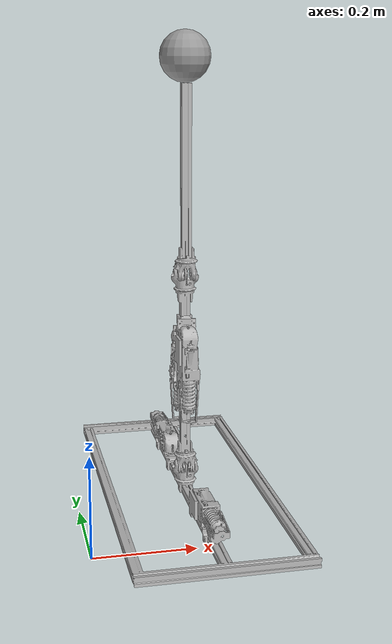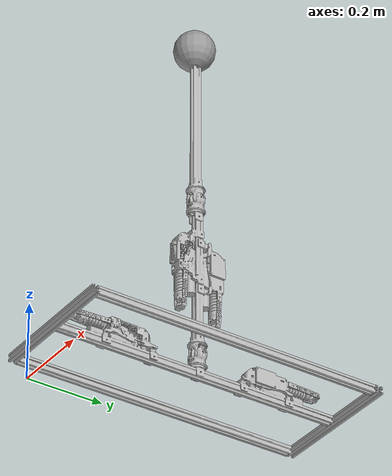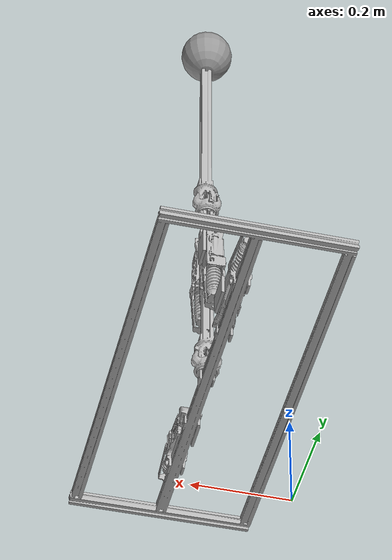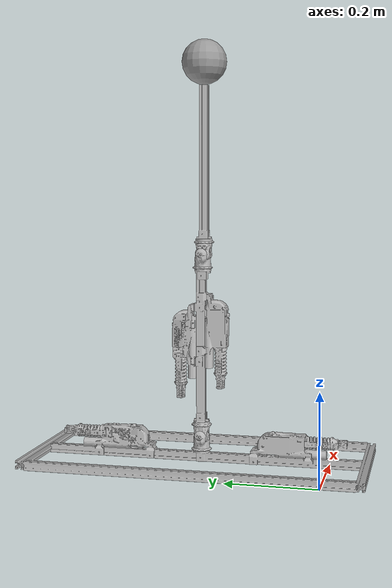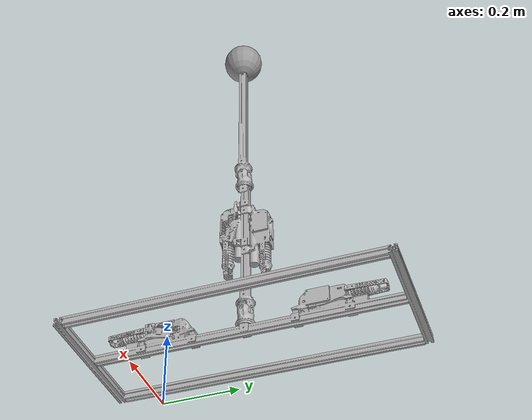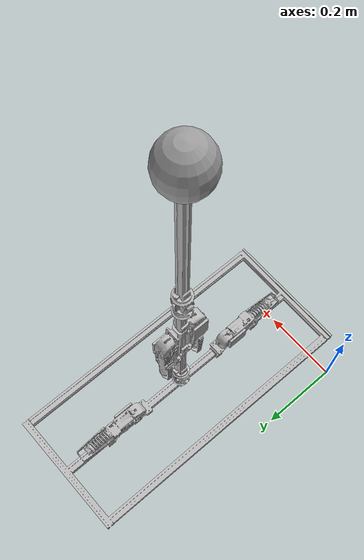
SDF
<?xml version='1.0'?>
<sdf version='1.6'>
  <model name='musc-le-ball'>
    <link name='base'>
      <kinematic>1</kinematic>
      <self_collide>0</self_collide>
      <pose frame=''>0.239578 0.30164 -0.00404 0 -0 0</pose>
      <inertial>
        <pose frame=''>0 0 0 0 -0 0</pose>
        <mass>4.57796</mass>
        <inertia>
          <ixx>0.696498</ixx>
          <ixy>-0.331245</ixy>
          <ixz>0.00520695</ixz>
          <iyy>0.325257</iyy>
          <iyz>0.00404122</iyz>
          <izz>1.02006</izz>
        </inertia>
      </inertial>
      <enable_wind>0</enable_wind>
      <visual name='base_visual'>
        <geometry>
          <mesh>
            <uri>model://musc-le/meshes/visuals/base.dae</uri>
            <scale>0.001 0.001 0.001</scale>
          </mesh>
        </geometry>
        <pose frame=''>0 0 0 0 -0 0</pose>
        <transparency>0</transparency>
        <cast_shadows>1</cast_shadows>
      </visual>
      <collision name='base_collision'>
        <laser_retro>0</laser_retro>
        <max_contacts>10</max_contacts>
        <pose frame=''>0 0 0 0 -0 0</pose>
        <geometry>
          <mesh>
            <uri>/home/missxa/.gazebo/models/musc-le/meshes/collisions/base.dae</uri>
            <scale>0.001 0.001 0.001</scale>
          </mesh>
        </geometry>
        <surface>
          <friction>
            <ode>
              <mu>1</mu>
              <mu2>1</mu2>
              <fdir1>0 0 0</fdir1>
              <slip1>0</slip1>
              <slip2>0</slip2>
            </ode>
            <torsional>
              <coefficient>1</coefficient>
              <patch_radius>0</patch_radius>
              <surface_radius>0</surface_radius>
              <use_patch_radius>1</use_patch_radius>
              <ode>
                <slip>0</slip>
              </ode>
            </torsional>
          </friction>
          <bounce>
            <restitution_coefficient>0</restitution_coefficient>
            <threshold>1e+06</threshold>
          </bounce>
          <contact>
            <collide_without_contact>0</collide_without_contact>
            <collide_without_contact_bitmask>1</collide_without_contact_bitmask>
            <collide_bitmask>1</collide_bitmask>
            <ode>
              <soft_cfm>0</soft_cfm>
              <soft_erp>0.2</soft_erp>
              <kp>1e+13</kp>
              <kd>1</kd>
              <max_vel>0.01</max_vel>
              <min_depth>0</min_depth>
            </ode>
            <bullet>
              <split_impulse>1</split_impulse>
              <split_impulse_penetration_threshold>-0.01</split_impulse_penetration_threshold>
              <soft_cfm>0</soft_cfm>
              <soft_erp>0.2</soft_erp>
              <kp>1e+13</kp>
              <kd>1</kd>
            </bullet>
          </contact>
        </surface>
      </collision>
    </link>
    <link name='ball'>
      <inertial>
        <mass>0.0117872</mass>
        <inertia>
          <ixx>1.257e-05</ixx>
          <ixy>0</ixy>
          <ixz>0</ixz>
          <iyy>1.257e-05</iyy>
          <iyz>0</iyz>
          <izz>1.257e-05</izz>
        </inertia>
        <pose frame=''>0 0 0 0 -0 0</pose>
      </inertial>
      <pose frame=''>0.238225 0.295141 0.900279 0 -0 0</pose>
      <gravity>1</gravity>
      <self_collide>0</self_collide>
      <kinematic>0</kinematic>
      <enable_wind>0</enable_wind>
      <visual name='visual'>
        <pose frame=''>0 0 0 0 -0 0</pose>
        <geometry>
          <sphere>
            <radius>0.0516307</radius>
          </sphere>
        </geometry>
        <material>
          <lighting>1</lighting>
          <script>
            <uri>file://media/materials/scripts/gazebo.material</uri>
            <name>Gazebo/Grey</name>
          </script>
          <shader type='vertex'>
            <normal_map>__default__</normal_map>
          </shader>
          <emissive>0 0 0 1</emissive>
        </material>
        <transparency>0</transparency>
        <cast_shadows>1</cast_shadows>
      </visual>
      <collision name='collision'>
        <laser_retro>0</laser_retro>
        <max_contacts>10</max_contacts>
        <pose frame=''>0 0 0 0 -0 0</pose>
        <geometry>
          <sphere>
            <radius>0.051631</radius>
          </sphere>
        </geometry>
        <surface>
          <friction>
            <ode>
              <mu>1</mu>
              <mu2>1</mu2>
              <fdir1>0 0 0</fdir1>
              <slip1>0</slip1>
              <slip2>0</slip2>
            </ode>
            <torsional>
              <coefficient>1</coefficient>
              <patch_radius>0</patch_radius>
              <surface_radius>0</surface_radius>
              <use_patch_radius>1</use_patch_radius>
              <ode>
                <slip>0</slip>
              </ode>
            </torsional>
          </friction>
          <bounce>
            <restitution_coefficient>0</restitution_coefficient>
            <threshold>1e+06</threshold>
          </bounce>
          <contact>
            <collide_without_contact>0</collide_without_contact>
            <collide_without_contact_bitmask>1</collide_without_contact_bitmask>
            <collide_bitmask>1</collide_bitmask>
            <ode>
              <soft_cfm>0</soft_cfm>
              <soft_erp>0.2</soft_erp>
              <kp>1e+13</kp>
              <kd>1</kd>
              <max_vel>0.01</max_vel>
              <min_depth>0</min_depth>
            </ode>
            <bullet>
              <split_impulse>1</split_impulse>
              <split_impulse_penetration_threshold>-0.01</split_impulse_penetration_threshold>
              <soft_cfm>0</soft_cfm>
              <soft_erp>0.2</soft_erp>
              <kp>1e+13</kp>
              <kd>1</kd>
            </bullet>
          </contact>
        </surface>
      </collision>
    </link>
    <link name='lower_arm'>
      <self_collide>0</self_collide>
      <pose frame=''>0.239039 0.302085 0.267292 0 -0 0</pose>
      <inertial>
        <pose frame=''>0 0 0 0 -0 0</pose>
        <mass>0.152374</mass>
        <inertia>
          <ixx>0.0276992</ixx>
          <ixy>-0.0110195</ixy>
          <ixz>-0.0122758</ixz>
          <iyy>0.0224755</iyy>
          <iyz>-0.00971948</iyz>
          <izz>0.0226828</izz>
        </inertia>
      </inertial>
      <enable_wind>0</enable_wind>
      <kinematic>0</kinematic>
      <visual name='lower_arm_visual'>
        <geometry>
          <mesh>
            <uri>model://musc-le/meshes/visuals/lower_arm.dae</uri>
            <scale>0.001 0.001 0.001</scale>
          </mesh>
        </geometry>
        <pose frame=''>0 0 0 0 -0 0</pose>
        <transparency>0</transparency>
        <cast_shadows>1</cast_shadows>
      </visual>
      <collision name='lower_arm_collision'>
        <laser_retro>0</laser_retro>
        <max_contacts>10</max_contacts>
        <pose frame=''>0 0 0 0 -0 0</pose>
        <geometry>
          <mesh>
            <uri>/home/missxa/.gazebo/models/musc-le/meshes/collisions/lower_arm.dae</uri>
            <scale>0.001 0.001 0.001</scale>
          </mesh>
        </geometry>
        <surface>
          <friction>
            <ode>
              <mu>1</mu>
              <mu2>1</mu2>
              <fdir1>0 0 0</fdir1>
              <slip1>0</slip1>
              <slip2>0</slip2>
            </ode>
            <torsional>
              <coefficient>1</coefficient>
              <patch_radius>0</patch_radius>
              <surface_radius>0</surface_radius>
              <use_patch_radius>1</use_patch_radius>
              <ode>
                <slip>0</slip>
              </ode>
            </torsional>
          </friction>
          <bounce>
            <restitution_coefficient>0</restitution_coefficient>
            <threshold>1e+06</threshold>
          </bounce>
          <contact>
            <collide_without_contact>0</collide_without_contact>
            <collide_without_contact_bitmask>1</collide_without_contact_bitmask>
            <collide_bitmask>1</collide_bitmask>
            <ode>
              <soft_cfm>0</soft_cfm>
              <soft_erp>0.2</soft_erp>
              <kp>1e+13</kp>
              <kd>1</kd>
              <max_vel>0.01</max_vel>
              <min_depth>0</min_depth>
            </ode>
            <bullet>
              <split_impulse>1</split_impulse>
              <split_impulse_penetration_threshold>-0.01</split_impulse_penetration_threshold>
              <soft_cfm>0</soft_cfm>
              <soft_erp>0.2</soft_erp>
              <kp>1e+13</kp>
              <kd>1</kd>
            </bullet>
          </contact>
        </surface>
      </collision>
    </link>
    <link name='upper_arm'>
      <self_collide>0</self_collide>
      <pose frame=''>0.240473 0.296462 0.598889 0 -0 0</pose>
      <inertial>
        <pose frame=''>0 0 0 0 -0 0</pose>
        <mass>0.0743535</mass>
        <inertia>
          <ixx>0.0343257</ixx>
          <ixy>-0.00530075</ixy>
          <ixz>-0.0132014</ixz>
          <iyy>0.0320916</iyy>
          <iyz>-0.0107095</iyz>
          <izz>0.010845</izz>
        </inertia>
      </inertial>
      <enable_wind>0</enable_wind>
      <kinematic>0</kinematic>
      <visual name='upper_arm_visual'>
        <geometry>
          <mesh>
            <uri>model://musc-le/meshes/visuals/upper_arm.dae</uri>
            <scale>0.001 0.001 0.001</scale>
          </mesh>
        </geometry>
        <pose frame=''>0 0 0 0 -0 0</pose>
        <transparency>0</transparency>
        <cast_shadows>1</cast_shadows>
        <material>
          <emissive>0 0 0 1</emissive>
        </material>
      </visual>
      <collision name='upper_arm_collision'>
        <laser_retro>0</laser_retro>
        <max_contacts>10</max_contacts>
        <pose frame=''>0 0 0 0 -0 0</pose>
        <geometry>
          <mesh>
            <uri>/home/missxa/.gazebo/models/musc-le/meshes/collisions/upper_arm.dae</uri>
            <scale>0.001 0.001 0.001</scale>
          </mesh>
        </geometry>
        <surface>
          <friction>
            <ode>
              <mu>1</mu>
              <mu2>1</mu2>
              <fdir1>0 0 0</fdir1>
              <slip1>0</slip1>
              <slip2>0</slip2>
            </ode>
            <torsional>
              <coefficient>1</coefficient>
              <patch_radius>0</patch_radius>
              <surface_radius>0</surface_radius>
              <use_patch_radius>1</use_patch_radius>
              <ode>
                <slip>0</slip>
              </ode>
            </torsional>
          </friction>
          <bounce>
            <restitution_coefficient>0</restitution_coefficient>
            <threshold>1e+06</threshold>
          </bounce>
          <contact>
            <collide_without_contact>0</collide_without_contact>
            <collide_without_contact_bitmask>1</collide_without_contact_bitmask>
            <collide_bitmask>1</collide_bitmask>
            <ode>
              <soft_cfm>0</soft_cfm>
              <soft_erp>0.2</soft_erp>
              <kp>1e+13</kp>
              <kd>1</kd>
              <max_vel>0.01</max_vel>
              <min_depth>0</min_depth>
            </ode>
            <bullet>
              <split_impulse>1</split_impulse>
              <split_impulse_penetration_threshold>-0.01</split_impulse_penetration_threshold>
              <soft_cfm>0</soft_cfm>
              <soft_erp>0.2</soft_erp>
              <kp>1e+13</kp>
              <kd>1</kd>
            </bullet>
          </contact>
        </surface>
      </collision>
    </link>
    <joint name='lower_joint' type='revolute'>
      <parent>base</parent>
      <child>lower_arm</child>
      <pose frame=''>-0.016839 -8.5e-05 -0.229631 0 -0 0</pose>
      <axis>
        <xyz>-1 0 0</xyz>
        <use_parent_model_frame>0</use_parent_model_frame>
        <limit>
          <lower>-1.0472</lower>
          <upper>1.0472</upper>
          <effort>-1</effort>
          <velocity>-1</velocity>
        </limit>
        <dynamics>
          <spring_reference>0</spring_reference>
          <spring_stiffness>0</spring_stiffness>
          <damping>0</damping>
          <friction>0</friction>
        </dynamics>
      </axis>
      <physics>
        <ode>
          <limit>
            <cfm>0</cfm>
            <erp>0.2</erp>
          </limit>
          <suspension>
            <cfm>0</cfm>
            <erp>0.2</erp>
          </suspension>
        </ode>
      </physics>
    </joint>
    <joint name='ball_joint' type='fixed'>

      <parent>upper_arm</parent>
      <child>ball</child>
      <pose frame=''>0 0 0 0 -0 0</pose>
    </joint>
    <joint name='upper_joint' type='revolute'>
      <parent>lower_arm</parent>
      <child>upper_arm</child>
      <pose frame=''>-0.004823 -3.3e-05 -0.137753 0 -0 0</pose>
      <axis>
        <xyz>1 -0 -0</xyz>
        <use_parent_model_frame>0</use_parent_model_frame>
        <limit>
          <lower>-1.39626</lower>
          <upper>1.39626</upper>
          <effort>-1</effort>
          <velocity>-1</velocity>
        </limit>
        <dynamics>
          <spring_reference>0</spring_reference>
          <spring_stiffness>0</spring_stiffness>
          <damping>0</damping>
          <friction>0</friction>
        </dynamics>
      </axis>
      <physics>
        <ode>
          <limit>
            <cfm>0</cfm>
            <erp>0.2</erp>
          </limit>
          <suspension>
            <cfm>0</cfm>
            <erp>0.2</erp>
          </suspension>
        </ode>
      </physics>
    </joint>
    <static>0</static>
    <allow_auto_disable>1</allow_auto_disable>
    <plugin name='cardsflow_gazebo_plugin' filename='libcardsflow_gazebo_plugin.so'/>
  </model>
</sdf>
